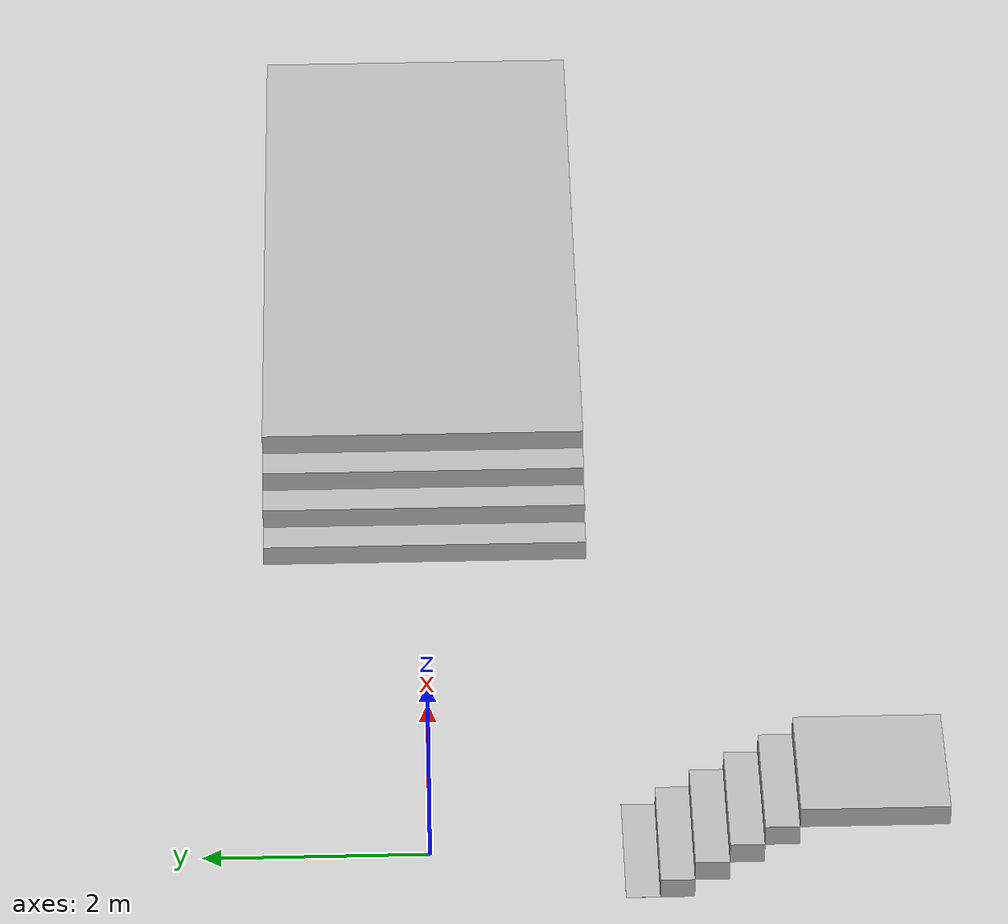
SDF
<?xml version="1.0" ?>
<sdf version="1.4">
	<world name="default">
		<scene>
			<shadows>false</shadows>
		</scene>
		<gui>
			<camera name="camera">
				<pose>3.0 0.0 1.0 0.0 0.3 3.14</pose>
			</camera>
		</gui>
		<physics type="ode">
			<gravity>0 0 -9.81</gravity>
			<real_time_update_rate>500</real_time_update_rate>
			<max_step_size>0.002</max_step_size>
			<ode>
				<solver>
					<type>quick</type>
					<iters>70</iters>
					<sor>1.2</sor>
				</solver>
				<constraints>
 					<cfm>0.0</cfm>
					<erp>0.2</erp>
					<contact_max_correcting_vel>100.0</contact_max_correcting_vel>
					<contact_surface_layer>0.001</contact_surface_layer>
				</constraints>
			</ode>
		</physics>
		<include>
			<uri>model://ground_plane</uri>
		</include>
		<include>
			<uri>model://sun</uri>
		</include>

		<model name="stair1">
			<pose>7 0 0.1 0 0 0</pose>

			<static>true</static>
			<link name="link">
				<visual name="visual0">
					<geometry>
						<box>
							<size>6 3 0.2</size>
						</box>
					</geometry>
				</visual>
				<collision name="collision0">
					<geometry>
						<box>
							<size>6 3 0.2</size>
						</box>
					</geometry>
				</collision>
			</link>
		</model>

		<model name="stair2">
			<pose>7.3 0 0.3 0 0 0</pose>

			<static>true</static>
			<link name="link">
				<visual name="visual0">
					<geometry>
						<box>
							<size>6 3 0.2</size>
						</box>
					</geometry>
				</visual>
				<collision name="collision0">
					<geometry>
						<box>
							<size>6 3 0.2</size>
						</box>
					</geometry>
				</collision>
			</link>
		</model>

		<model name="stair3">
			<pose>7.6 0 0.5 0 0 0</pose>

			<static>true</static>
			<link name="link">
				<visual name="visual0">
					<geometry>
						<box>
							<size>6 3 0.2</size>
						</box>
					</geometry>
				</visual>
				<collision name="collision0">
					<geometry>
						<box>
							<size>6 3 0.2</size>
						</box>
					</geometry>
				</collision>
			</link>
		</model>

		<model name="stair4">
			<pose>7.9 0 0.7 0 0 0</pose>

			<static>true</static>
			<link name="link">
				<visual name="visual0">
					<geometry>
						<box>
							<size>6 3 0.2</size>
						</box>
					</geometry>
				</visual>
				<collision name="collision0">
					<geometry>
						<box>
							<size>6 3 0.2</size>
						</box>
					</geometry>
				</collision>
			</link>
		</model>

		<model name="starthelper">
			<pose> 0 -1.85 0 0 0 0 </pose>
			<static>true</static>
			<link name="link">
				<visual name="visual0">
					<geometry>
						<box>
							<size>1.2 0.3 0.001</size>
						</box>
					</geometry>
				</visual>
			</link>
		</model>

		<model name="s1">
			<pose>0 -2.15 0.1 0 0 0</pose>
			<static>true</static>
			<link name="link">
				<visual name="visual0">
					<geometry>
						<box>
							<size>1.2 0.3 0.2</size>
						</box>
					</geometry>
				</visual>
				<collision name="collision0">
					<geometry>
						<box>
							<size>1.2 0.3 0.2</size>
						</box>
					</geometry>
					<surface>
						<friction>
							<ode>
								<mu>100000</mu>
								<mu2>100000</mu2>
							</ode>
						</friction>
					</surface>
				</collision>
			</link>
		</model>

		<model name="s2">
			<pose>0 -2.45 0.3 0 0 0</pose>
			<static>true</static>
			<link name="link">
				<visual name="visual0">
					<geometry>
						<box>
							<size>1.2 0.3 0.2</size>
						</box>
					</geometry>
				</visual>
				<collision name="collision0">
					<geometry>
						<box>
							<size>1.2 0.3 0.2</size>
						</box>
					</geometry>
					<surface>
						<friction>
							<ode>
								<mu>100000</mu>
								<mu2>100000</mu2>
							</ode>
						</friction>
					</surface>
				</collision>
			</link>
		</model>
		<model name="s3">
			<pose>0 -2.75 0.5 0 0 0</pose>
			<static>true</static>
			<link name="link">
				<visual name="visual0">
					<geometry>
						<box>
							<size>1.2 0.3 0.2</size>
						</box>
					</geometry>
				</visual>
				<collision name="collision0">
					<geometry>
						<box>
							<size>1.2 0.3 0.2</size>
						</box>
					</geometry>
					<surface>
						<friction>
							<ode>
								<mu>100000</mu>
								<mu2>100000</mu2>
							</ode>
						</friction>
					</surface>
				</collision>
			</link>
		</model>
		<model name="s4">
			<pose>0 -3.05 0.7 0 0 0</pose>
			<static>true</static>
			<link name="link">
				<visual name="visual0">
					<geometry>
						<box>
							<size>1.2 0.3 0.2</size>
						</box>
					</geometry>
				</visual>
				<collision name="collision0">
					<geometry>
						<box>
							<size>1.2 0.3 0.2</size>
						</box>
					</geometry>
					<surface>
						<friction>
							<ode>
								<mu>100000</mu>
								<mu2>100000</mu2>
							</ode>
						</friction>
					</surface>
				</collision>
			</link>
		</model>
		<model name="s5">
			<pose>0 -3.85 0.9 0 0 0</pose>
			<static>true</static>
			<link name="link">
				<visual name="visual0">
					<geometry>
						<box>
							<size>1.2 1.3 0.2</size>
						</box>
					</geometry>
				</visual>
				<collision name="collision0">
					<geometry>
						<box>
							<size>1.2 1.3 0.2</size>
						</box>
					</geometry>
					<surface>
						<friction>
							<ode>
								<mu>100000</mu>
								<mu2>100000</mu2>
							</ode>
						</friction>
					</surface>
				</collision>
			</link>
		</model>

	</world>
</sdf>
